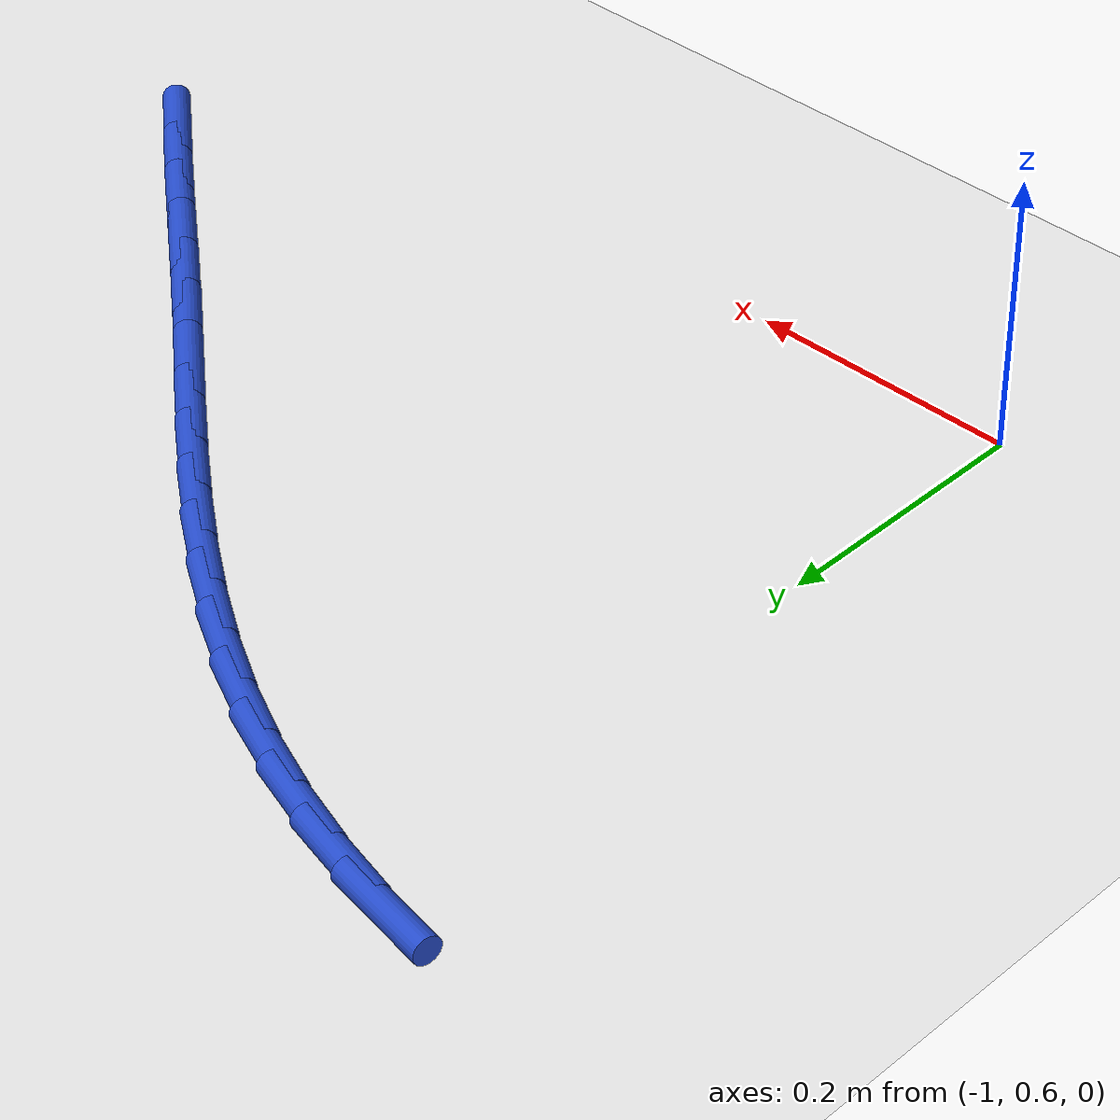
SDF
<sdf version="1.6">
 <world name="default">
  <model name="ground_plane">
   <static>1</static>
   <link name="link">
    <collision name="collision">
     <geometry><plane><normal>0 0 1</normal><size>100 100</size></plane></geometry>
     <surface><friction><ode><mu>100</mu><mu2>50</mu2></ode></friction></surface>
    </collision>
    <visual name="visual">
     <cast_shadows>0</cast_shadows>
     <geometry><plane><normal>0 0 1</normal><size>100 100</size></plane></geometry>
     <material>
      <script><uri>file://media/materials/scripts/gazebo.material</uri><name>Gazebo/WhiteGlow</name></script>
     </material>
    </visual>
   </link>
  </model>
  <model name="line">
   <link name="link_17">
    <pose>-0.34452577953238706 0.7194563434288512 0.01 0 1.57 -0.7158774652776898</pose>
    <collision name="collision">
     <geometry><cylinder><radius>0.01</radius><length>0.08</length></cylinder></geometry>
    </collision>
    <visual name="visual">
     <material>
      <script><name>Gazebo/Blue</name><uri>file://media/materials/scripts/gazebo.material</uri></script>
     </material>
     <geometry><cylinder><radius>0.01</radius><length>0.08</length></cylinder></geometry>
    </visual>
   </link>
   <link name="link_18">
    <pose>-0.3818903961813949 0.7519561000516289 0.01 0 1.57 -0.7042772592036856</pose>
    <collision name="collision">
     <geometry><cylinder><radius>0.01</radius><length>0.08</length></cylinder></geometry>
    </collision>
    <visual name="visual">
     <material>
      <script><name>Gazebo/Blue</name><uri>file://media/materials/scripts/gazebo.material</uri></script>
     </material>
     <geometry><cylinder><radius>0.01</radius><length>0.08</length></cylinder></geometry>
    </visual>
   </link>
   <link name="link_19">
    <pose>-0.41974179690274716 0.7841156577891337 0.01 0 1.57 -0.6988157278524184</pose>
    <collision name="collision">
     <geometry><cylinder><radius>0.01</radius><length>0.08</length></cylinder></geometry>
    </collision>
    <visual name="visual">
     <material>
      <script><name>Gazebo/Blue</name><uri>file://media/materials/scripts/gazebo.material</uri></script>
     </material>
     <geometry><cylinder><radius>0.01</radius><length>0.08</length></cylinder></geometry>
    </visual>
   </link>
   <link name="link_20">
    <pose>-0.45781283266427897 0.816105452562274 0.01 0 1.57 -0.6994412259201085</pose>
    <collision name="collision">
     <geometry><cylinder><radius>0.01</radius><length>0.08</length></cylinder></geometry>
    </collision>
    <visual name="visual">
     <material>
      <script><name>Gazebo/Blue</name><uri>file://media/materials/scripts/gazebo.material</uri></script>
     </material>
     <geometry><cylinder><radius>0.01</radius><length>0.08</length></cylinder></geometry>
    </visual>
   </link>
   <link name="link_21">
    <pose>-0.4958363544338257 0.848095920291958 0.01 0 1.57 -0.7061385388451107</pose>
    <collision name="collision">
     <geometry><cylinder><radius>0.01</radius><length>0.08</length></cylinder></geometry>
    </collision>
    <visual name="visual">
     <material>
      <script><name>Gazebo/Blue</name><uri>file://media/materials/scripts/gazebo.material</uri></script>
     </material>
     <geometry><cylinder><radius>0.01</radius><length>0.08</length></cylinder></geometry>
    </visual>
   </link>
   <link name="link_22">
    <pose>-0.5335463627830518 0.880256394657043 0.01 0 1.57 -0.7142990602482188</pose>
    <collision name="collision">
     <geometry><cylinder><radius>0.01</radius><length>0.08</length></cylinder></geometry>
    </collision>
    <visual name="visual">
     <material>
      <script><name>Gazebo/Blue</name><uri>file://media/materials/scripts/gazebo.material</uri></script>
     </material>
     <geometry><cylinder><radius>0.01</radius><length>0.08</length></cylinder></geometry>
    </visual>
   </link>
   <link name="link_23">
    <pose>-0.5708447278686133 0.9125952557006942 0.01 0 1.57 -0.7143437357718527</pose>
    <collision name="collision">
     <geometry><cylinder><radius>0.01</radius><length>0.08</length></cylinder></geometry>
    </collision>
    <visual name="visual">
     <material>
      <script><name>Gazebo/Blue</name><uri>file://media/materials/scripts/gazebo.material</uri></script>
     </material>
     <geometry><cylinder><radius>0.01</radius><length>0.08</length></cylinder></geometry>
    </visual>
   </link>
   <link name="link_24">
    <pose>-0.6079760949042965 0.9447922301744632 0.01 0 1.57 -0.7049847693766452</pose>
    <collision name="collision">
     <geometry><cylinder><radius>0.01</radius><length>0.08</length></cylinder></geometry>
    </collision>
    <visual name="visual">
     <material>
      <script><name>Gazebo/Blue</name><uri>file://media/materials/scripts/gazebo.material</uri></script>
     </material>
     <geometry><cylinder><radius>0.01</radius><length>0.08</length></cylinder></geometry>
    </visual>
   </link>
   <link name="link_25">
    <pose>-0.6452269343424237 0.9764869427220277 0.01 0 1.57 -0.6860790593038789</pose>
    <collision name="collision">
     <geometry><cylinder><radius>0.01</radius><length>0.08</length></cylinder></geometry>
    </collision>
    <visual name="visual">
     <material>
      <script><name>Gazebo/Blue</name><uri>file://media/materials/scripts/gazebo.material</uri></script>
     </material>
     <geometry><cylinder><radius>0.01</radius><length>0.08</length></cylinder></geometry>
    </visual>
   </link>
   <link name="link_26">
    <pose>-0.682883716635318 1.0073190179870664 0.01 0 1.57 -0.6574899913007259</pose>
    <collision name="collision">
     <geometry><cylinder><radius>0.01</radius><length>0.08</length></cylinder></geometry>
    </collision>
    <visual name="visual">
     <material>
      <script><name>Gazebo/Blue</name><uri>file://media/materials/scripts/gazebo.material</uri></script>
     </material>
     <geometry><cylinder><radius>0.01</radius><length>0.08</length></cylinder></geometry>
    </visual>
   </link>
   <link name="link_27">
    <pose>-0.7212329122353013 1.0369280806132568 0.01 0 1.57 -0.6191405631445258</pose>
    <collision name="collision">
     <geometry><cylinder><radius>0.01</radius><length>0.08</length></cylinder></geometry>
    </collision>
    <visual name="visual">
     <material>
      <script><name>Gazebo/Blue</name><uri>file://media/materials/scripts/gazebo.material</uri></script>
     </material>
     <geometry><cylinder><radius>0.01</radius><length>0.08</length></cylinder></geometry>
    </visual>
   </link>
   <link name="link_28">
    <pose>-0.7605609915946963 1.0649537552442772 0.01 0 1.57 -0.5710957198359372</pose>
    <collision name="collision">
     <geometry><cylinder><radius>0.01</radius><length>0.08</length></cylinder></geometry>
    </collision>
    <visual name="visual">
     <material>
      <script><name>Gazebo/Blue</name><uri>file://media/materials/scripts/gazebo.material</uri></script>
     </material>
     <geometry><cylinder><radius>0.01</radius><length>0.08</length></cylinder></geometry>
    </visual>
   </link>
   <link name="link_29">
    <pose>-0.8011544251658256 1.0910356665238055 0.01 0 1.57 -0.5136694395763259</pose>
    <collision name="collision">
     <geometry><cylinder><radius>0.01</radius><length>0.08</length></cylinder></geometry>
    </collision>
    <visual name="visual">
     <material>
      <script><name>Gazebo/Blue</name><uri>file://media/materials/scripts/gazebo.material</uri></script>
     </material>
     <geometry><cylinder><radius>0.01</radius><length>0.08</length></cylinder></geometry>
    </visual>
   </link>
   <link name="link_30">
    <pose>-0.8432996834010119 1.1148134390955202 0.01 0 1.57 -0.4475956365622116</pose>
    <collision name="collision">
     <geometry><cylinder><radius>0.01</radius><length>0.08</length></cylinder></geometry>
    </collision>
    <visual name="visual">
     <material>
      <script><name>Gazebo/Blue</name><uri>file://media/materials/scripts/gazebo.material</uri></script>
     </material>
     <geometry><cylinder><radius>0.01</radius><length>0.08</length></cylinder></geometry>
    </visual>
   </link>
   <link name="link_31">
    <pose>-0.8872800356547518 1.1359281026238215 0.01 0 1.57 -0.3775048325289558</pose>
    <collision name="collision">
     <geometry><cylinder><radius>0.01</radius><length>0.08</length></cylinder></geometry>
    </collision>
    <visual name="visual">
     <material>
      <script><name>Gazebo/Blue</name><uri>file://media/materials/scripts/gazebo.material</uri></script>
     </material>
     <geometry><cylinder><radius>0.01</radius><length>0.08</length></cylinder></geometry>
    </visual>
   </link>
   <link name="link_32">
    <pose>-0.933155410529325 1.1541187151377945 0.01 0 1.57 -0.3092686187401753</pose>
    <collision name="collision">
     <geometry><cylinder><radius>0.01</radius><length>0.08</length></cylinder></geometry>
    </collision>
    <visual name="visual">
     <material>
      <script><name>Gazebo/Blue</name><uri>file://media/materials/scripts/gazebo.material</uri></script>
     </material>
     <geometry><cylinder><radius>0.01</radius><length>0.08</length></cylinder></geometry>
    </visual>
   </link>
   <link name="link_33">
    <pose>-0.9806202668066696 1.1692847460937932 0.01 0 1.57 -0.24260107318995597</pose>
    <collision name="collision">
     <geometry><cylinder><radius>0.01</radius><length>0.08</length></cylinder></geometry>
    </collision>
    <visual name="visual">
     <material>
      <script><name>Gazebo/Blue</name><uri>file://media/materials/scripts/gazebo.material</uri></script>
     </material>
     <geometry><cylinder><radius>0.01</radius><length>0.08</length></cylinder></geometry>
    </visual>
   </link>
   <link name="link_34">
    <pose>-1.0293352568735465 1.181340503196908 0.01 0 1.57 -0.17667068221247198</pose>
    <collision name="collision">
     <geometry><cylinder><radius>0.01</radius><length>0.08</length></cylinder></geometry>
    </collision>
    <visual name="visual">
     <material>
      <script><name>Gazebo/Blue</name><uri>file://media/materials/scripts/gazebo.material</uri></script>
     </material>
     <geometry><cylinder><radius>0.01</radius><length>0.08</length></cylinder></geometry>
    </visual>
   </link>
  </model>
 </world>
</sdf>
